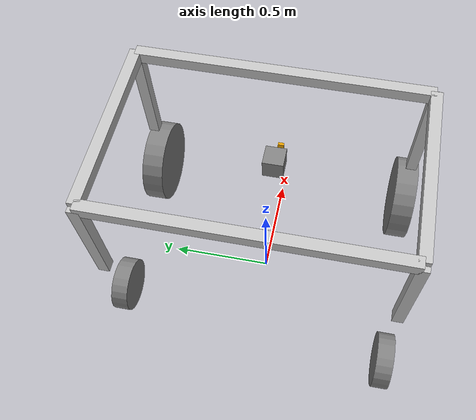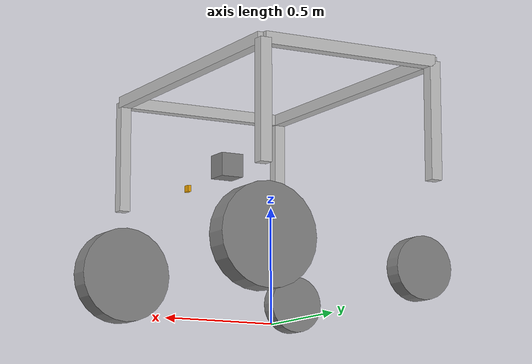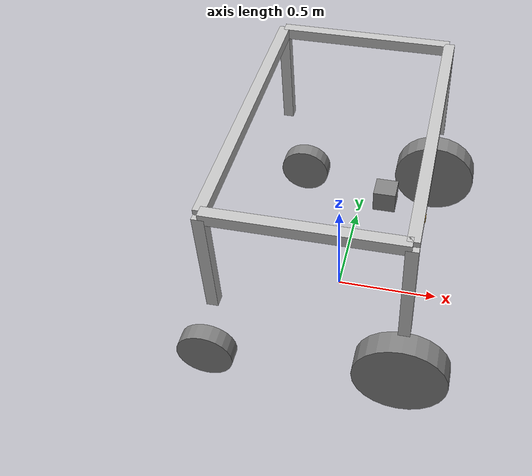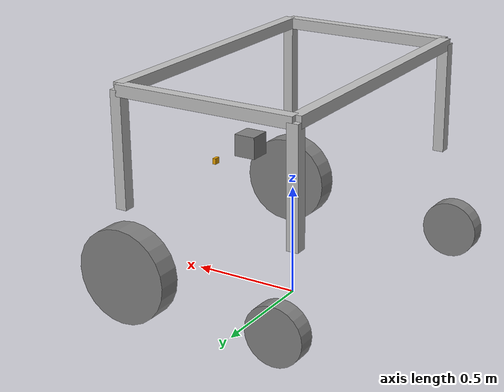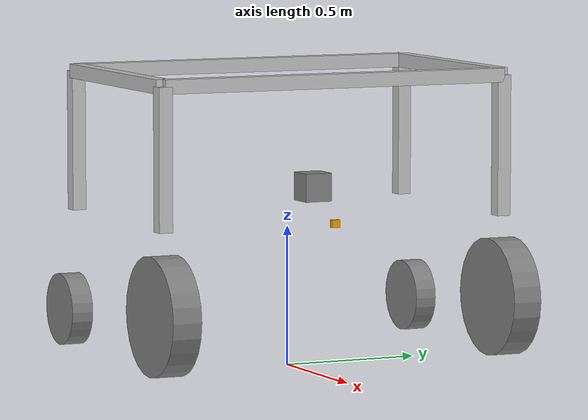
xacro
<?xml version="1.0"?>
	<robot name="weed" xmlns:xacro="http://ros.org/wiki/xacro">

	<link name="base_footprint"/>

	<joint name="base_joint" type="fixed">
		<parent link="base_footprint"/>
		<child link="base_link" />
		<origin xyz="0 0 0.8" rpy="0 0 0"/>
	</joint>

	<link name="base_link">
    <inertial>
			<origin xyz="0 0 0" rpy="0 0 0" />
			<mass value="30" />
		</inertial>
  </link>

	<!-- #################### LEGS #################### -->

	<joint name="front_left_joint" type="fixed">
		<parent link="base_link"/>
		<child link="front_left" />
		<origin xyz="0.4 0.65 0" rpy="0 0 0"/>
	</joint>

	<link name="front_left">
		<inertial>
			<origin xyz="0 0 0" rpy="0 0 0" />
			<mass value="1" />
			<inertia ixx="0" ixy="0.0" ixz="0.0"
					iyy="0" iyz="0.0"
					izz="0" />
		</inertial>
		<visual>
			<origin xyz="0 0 0" rpy="0 0 0" />
			<geometry>
				<box size = "0.05 0.05 0.5"/>
			</geometry>
			<material name="">
				<color rgba="0.752941176470588 0.752941176470588 0.752941176470588 1" />
			</material>
		</visual>
		<collision>
			<origin xyz="0 0 0" rpy="0 0 0" />
			<geometry>
				<box size = "0.05 0.05 0.5"/>
			</geometry>
		</collision>
	</link>

	<joint name="front_right_joint" type="fixed">
		<parent link="base_link"/>
		<child link="front_right" />
		<origin xyz="0.4 -0.65 0" rpy="0 0 0"/>
	</joint>

	<link name="front_right">
		<inertial>
			<origin xyz="0 0 0" rpy="0 0 0" />
			<mass value="1" />
			<inertia ixx="0" ixy="0.0" ixz="0.0"
					iyy="0" iyz="0.0"
					izz="0" />
		</inertial>
		<visual>
			<origin xyz="0 0 0" rpy="0 0 0" />
			<geometry>
				<box size = "0.05 0.05 0.5"/>
			</geometry>
			<material name="">
				<color rgba="0.752941176470588 0.752941176470588 0.752941176470588 1" />
			</material>
		</visual>
		<collision>
			<origin xyz="0 0 0" rpy="0 0 0" />
			<geometry>
				<box size = "0.05 0.05 0.5"/>
			</geometry>
		</collision>
	</link>

	<joint name="back_left_joint" type="fixed">
		<parent link="base_link"/>
		<child link="back_left" />
		<origin xyz="-0.4 0.65 0" rpy="0 0 0"/>
	</joint>

	<link name="back_left">
		<inertial>
			<origin xyz="0 0 0" rpy="0 0 0" />
			<mass value="1" />
			<inertia ixx="0" ixy="0.0" ixz="0.0"
					iyy="0" iyz="0.0"
					izz="0" />
		</inertial>
		<visual>
			<origin xyz="0 0 0" rpy="0 0 0" />
			<geometry>
				<box size = "0.05 0.05 0.5"/>
			</geometry>
			<material name="">
				<color rgba="0.752941176470588 0.752941176470588 0.752941176470588 1" />
			</material>
		</visual>
		<collision>
			<origin xyz="0 0 0" rpy="0 0 0" />
			<geometry>
				<box size = "0.05 0.05 0.4"/>
			</geometry>
		</collision>
	</link>

	<joint name="back_right_joint" type="fixed">
		<parent link="base_link"/>
		<child link="back_right" />
		<origin xyz="-0.4 -0.65 0" rpy="0 0 0"/>
	</joint>

	<link name="back_right">
		<inertial>
			<origin xyz="0 0 0" rpy="0 0 0" />
			<mass value="1" />
			<inertia ixx="0" ixy="0.0" ixz="0.0"
					iyy="0" iyz="0.0"
					izz="0" />
		</inertial>
		<visual>
			<origin xyz="0 0 0" rpy="0 0 0" />
			<geometry>
				<box size = "0.05 0.05 0.5"/>
			</geometry>
			<material name="">
				<color rgba="0.752941176470588 0.752941176470588 0.752941176470588 1" />
			</material>
		</visual>
		<collision>
			<origin xyz="0 0 0" rpy="0 0 0" />
			<geometry>
				<box size = "0.05 0.05 0.4"/>
			</geometry>
		</collision>
	</link>

	<!-- #################### TOP #################### -->

	<joint name="top_front_joint" type="fixed">
		<parent link="base_link"/>
		<child link="top_front" />
		<origin xyz="0.4 0 0.25" rpy="0 0 0"/>
	</joint>

	<link name="top_front">
		<inertial>
			<origin xyz="0 0 0" rpy="0 0 0" />
			<mass value="1" />
			<inertia ixx="0" ixy="0.0" ixz="0.0"
					iyy="0" iyz="0.0"
					izz="0" />
		</inertial>
		<visual>
			<origin xyz="0 0 0" rpy="0 0 0" />
			<geometry>
				<box size = "0.05 1.3 0.05"/>
			</geometry>
			<material name="">
				<color rgba="0.752941176470588 0.752941176470588 0.752941176470588 1" />
			</material>
		</visual>
		<collision>
			<origin xyz="0 0 0" rpy="0 0 0" />
			<geometry>
				<box size = "0.05 1.3 0.05"/>
			</geometry>
		</collision>
	</link>

	<joint name="top_back_joint" type="fixed">
		<parent link="base_link"/>
		<child link="top_back" />
		<origin xyz="-0.4 0 0.25" rpy="0 0 0"/>
	</joint>

	<link name="top_back">
		<inertial>
			<origin xyz="0 0 0" rpy="0 0 0" />
			<mass value="1" />
			<inertia ixx="0" ixy="0.0" ixz="0.0"
					iyy="0" iyz="0.0"
					izz="0" />
		</inertial>
		<visual>
			<origin xyz="0 0 0" rpy="0 0 0" />
			<geometry>
				<box size = "0.05 1.3 0.05"/>
			</geometry>
			<material name="">
				<color rgba="0.752941176470588 0.752941176470588 0.752941176470588 1" />
			</material>
		</visual>
		<collision>
			<origin xyz="0 0 0" rpy="0 0 0" />
			<geometry>
				<box size = "0.05 1.3 0.05"/>
			</geometry>
		</collision>
	</link>

	<joint name="top_left_joint" type="fixed">
		<parent link="base_link"/>
		<child link="top_left" />
		<origin xyz="0 0.65 0.25" rpy="0 0 0"/>
	</joint>

	<link name="top_left">
		<inertial>
			<origin xyz="0 0 0" rpy="0 0 0" />
			<mass value="1" />
			<inertia ixx="0" ixy="0.0" ixz="0.0"
					iyy="0" iyz="0.0"
					izz="0" />
		</inertial>
		<visual>
			<origin xyz="0 0 0" rpy="0 0 0" />
			<geometry>
				<box size = "0.8 0.05 0.05"/>
			</geometry>
			<material name="">
				<color rgba="0.752941176470588 0.752941176470588 0.752941176470588 1" />
			</material>
		</visual>
		<collision>
			<origin xyz="0 0 0" rpy="0 0 0" />
			<geometry>
				<box size = "0.8 0.05 0.05"/>
			</geometry>
		</collision>
	</link>

	<joint name="top_right_joint" type="fixed">
		<parent link="base_link"/>
		<child link="top_right" />
		<origin xyz="0 -0.65 0.25" rpy="0 0 0"/>
	</joint>

	<link name="top_right">
		<inertial>
			<origin xyz="0 0 0" rpy="0 0 0" />
			<mass value="1" />
			<inertia ixx="0" ixy="0.0" ixz="0.0"
					iyy="0" iyz="0.0"
					izz="0" />
		</inertial>
		<visual>
			<origin xyz="0 0 0" rpy="0 0 0" />
			<geometry>
				<box size = "0.8 0.05 0.05"/>
			</geometry>
			<material name="">
				<color rgba="0.752941176470588 0.752941176470588 0.752941176470588 1" />
			</material>
		</visual>
		<collision>
			<origin xyz="0 0 0" rpy="0 0 0" />
			<geometry>
				<box size = "0.8 0.05 0.05"/>
			</geometry>
		</collision>
	</link>

	<!-- TEKERLEK -->
  <link
    name="front_w_l">
    <inertial>
      <origin
        xyz="0 0 0"
        rpy="0 0 0" />
      <mass
        value="3.630032967311711" />
      <inertia
        ixx="0.00669221232999861"
        ixy="1.46876065216874E-06"
        ixz="-1.83677052642238E-07"
        iyy="0.00381017219621702"
        iyz="2.02228538609624E-07"
        izz="0.00380710944075326" />
    </inertial>
    <visual>
      <origin
        xyz="0 0 0"
        rpy="0 0 0" />
     <geometry>
       <cylinder radius="0.21" length="0.105"/>
     </geometry>
      <material
        name="">
        <color
          rgba="0.501960784313725 0.501960784313725 0.501960784313725 1" />
      </material>
    </visual>
    <collision>
      <surface>
        <friction>
          <ode><mu>100000.0</mu><mu2>100000.0</mu2></ode>
        </friction>
      </surface>
      <origin
        xyz="0 0 0"
        rpy="0 0 0" />
     <geometry>
       <cylinder radius="0.21" length="0.105"/>
     </geometry>
    </collision>
  </link>
  <joint
    name="front_wl_j"
    type="continuous">
    <origin
      xyz="0.4 0.65 -0.54"
      rpy="1.57 0 0" />
    <parent
      link="base_link" />
    <child
      link="front_w_l" />
    <axis
      xyz="0 0 1" />
  </joint>
  <link
    name="front_w_r">
    <inertial>
      <origin
        xyz="0 0 0"
        rpy="0 0 0" />
      <mass
        value="3.630032967311706" />
      <inertia
        ixx="0.0066922123299986"
        ixy="1.4687606367534E-06"
        ixz="-1.83677063980871E-07"
        iyy="0.00381016787088096"
        iyz="2.02228538641145E-07"
        izz="0.00380710511541725" />
    </inertial>
    <visual>
      <origin
        xyz="0 0 0"
        rpy="0 0 0" />
     <geometry>
       <cylinder radius="0.21" length="0.105"/>
     </geometry>
      <material
        name="">
        <color
          rgba="0.501960784313725 0.501960784313725 0.501960784313725 1" />
      </material>
    </visual>
    <collision>
      <surface>
        <friction>
          <ode><mu>100000.0</mu><mu2>100000.0</mu2></ode>
        </friction>
      </surface>
      <origin
        xyz="0 0 0"
        rpy="0 0 0" />
     <geometry>
       <cylinder radius="0.21" length="0.105"/>
     </geometry>
    </collision>
  </link>
  <joint
    name="front_wr_j"
    type="continuous">
    <origin
      xyz="0.4 -0.65 -0.54"
      rpy="1.57 0 0" />
    <parent
      link="base_link" />
    <child
      link="front_w_r" />
    <axis
      xyz="0 0 1" />
  </joint>
  <link
    name="back_c_l">
    <inertial>
      <origin
        xyz="0.0408020089137942 -2.20027751224317E-06 -0.0753064138736016"
        rpy="0 0 0" />
      <mass
        value="3" />
      <inertia
        ixx="0.0119429751240832"
        ixy="1.51346058960582E-07"
        ixz="0.0047086697609114"
        iyy="0.012719613396601"
        iyz="-3.20565703090961E-07"
        izz="0.00449043316235224" />
    </inertial>
    <visual>
      <origin
        xyz="0 0 0"
        rpy="0 0 0" />
     <geometry>
       <box size = "0.01 0.01 0.01"/>
     </geometry>
      <material
        name="">
        <color
          rgba="0.752941176470588 0.752941176470588 0.752941176470588 1" />
      </material>
    </visual>
    <collision>
      <surface>
        <friction>
          <ode><mu>100000.0</mu><mu2>100000.0</mu2></ode>
        </friction>
      </surface>
      <origin
        xyz="0 0 0"
        rpy="0 0 0" />
     <geometry>
       <box size = "0.01 0.01 0.01"/>
     </geometry>
    </collision>
  </link>
  <joint
    name="back_cl_j"
    type="continuous">
    <origin
      xyz="-0.4 0.65 -0.62"
      rpy="0 -0 0" />
    <parent
      link="base_link" />
    <child
      link="back_c_l" />
    <axis
      xyz="0 0 1" />
    <limit effort="10000" velocity="1000"/>
  </joint>
  <link
    name="back_w_l">
    <inertial>
      <origin
        xyz="-0.000406180079597973 -6.75068276938251E-05 1.52646951747659E-05"
        rpy="0 0 0" />
      <mass
        value="0.630032967311717" />
      <inertia
        ixx="0.00669221232999866"
        ixy="1.46876065217403E-06"
        ixz="-1.83677052642392E-07"
        iyy="0.00381017219621705"
        iyz="2.02228538599299E-07"
        izz="0.00380710944075334" />
    </inertial>
    <visual>
      <origin
        xyz="0 0 0"
        rpy="0 0 0" />
     <geometry>
       <cylinder radius="0.13" length="0.078"/>
     </geometry>
      <material
        name="">
        <color
          rgba="0.501960784313725 0.501960784313725 0.501960784313725 1" />
      </material>
    </visual>
    <collision>
      <surface>
        <friction>
          <ode><mu>100000.0</mu><mu2>100000.0</mu2></ode>
        </friction>
      </surface>
      <origin
        xyz="0 0 0"
        rpy="0 0 0" />
     <geometry>
       <cylinder radius="0.13" length="0.078"/>
     </geometry>
    </collision>
  </link>
  <joint
    name="back_wl_j"
    type="continuous">
    <origin
      xyz="0.079407 0 0"
      rpy="1.57 0 0" />
    <parent
      link="back_c_l" />
    <child
      link="back_w_l" />
    <axis
      xyz="0 0 1" />
  </joint>
  <link
    name="back_c_r">
    <inertial>
      <origin
        xyz="-0.0408020085623402 2.19978087612205E-06 -0.0753064146672595"
        rpy="0 0 0" />
      <mass
        value="3" />
      <inertia
        ixx="0.0119429749924109"
        ixy="1.51328903334174E-07"
        ixz="-0.00470866980430646"
        iyy="0.0127196133801171"
        iyz="3.20626513970711E-07"
        izz="0.00449043322343492" />
    </inertial>
    <visual>
      <origin
        xyz="0 0 0"
        rpy="0 0 0" />
     <geometry>
       <box size = "0.01 0.01 0.01"/>
     </geometry>
      <material
        name="">
        <color
          rgba="0.752941176470588 0.752941176470588 0.752941176470588 1" />
      </material>
    </visual>
    <collision>
      <surface>
        <friction>
          <ode><mu>100000.0</mu><mu2>100000.0</mu2></ode>
        </friction>
      </surface>
      <origin
        xyz="0 0 0"
        rpy="0 0 0" />
     <geometry>
       <box size = "0.01 0.01 0.01"/>
     </geometry>
    </collision>
  </link>
  <joint
    name="back_cr_j"
    type="continuous">
    <origin
      xyz="-0.4 -0.65 -0.62"
      rpy="0 0 0" />
    <parent
      link="base_link" />
    <child
      link="back_c_r" />
    <axis
      xyz="0 0 1" />
    <limit effort="10000" velocity="1000"/>
  </joint>
  <link
    name="back_w_r">
    <inertial>
      <origin
        xyz="-0.000406180073682316 -6.75068276933533E-05 1.52646951745439E-05"
        rpy="0 0 0" />
      <mass
        value="0.630032967311691" />
      <inertia
        ixx="0.0066922123299985"
        ixy="1.46876064431743E-06"
        ixz="-1.83677052786695E-07"
        iyy="0.00381017423444503"
        iyz="2.0222853863883E-07"
        izz="0.0038071114789812" />
    </inertial>
    <visual>
      <origin
        xyz="0 0 0"
        rpy="0 0 0" />
     <geometry>
       <cylinder radius="0.13" length="0.078"/>
     </geometry>
      <material
        name="">
        <color
          rgba="0.501960784313725 0.501960784313725 0.501960784313725 1" />
      </material>
    </visual>
    <collision>
      <surface>
        <friction>
          <ode><mu>100000.0</mu><mu2>100000.0</mu2></ode>
        </friction>
      </surface>
      <origin
        xyz="0 0 0"
        rpy="0 0 0" />
     <geometry>
       <cylinder radius="0.13" length="0.078"/>
     </geometry>
    </collision>
  </link>
  <joint
    name="back_wr_j"
    type="continuous">
    <origin
      xyz="-0.079407 0 0"
      rpy="1.57 0 0" />
    <parent
      link="back_c_r" />
    <child
      link="back_w_r" />
    <axis
      xyz="0 0 1" />
  </joint>

  <gazebo reference="front_left">
    <material>Gazebo/Red</material>
  </gazebo>
  <gazebo reference="front_right">
    <material>Gazebo/Red</material>
  </gazebo>
  <gazebo reference="back_left">
    <material>Gazebo/Red</material>
  </gazebo>
  <gazebo reference="back_right">
    <material>Gazebo/Red</material>
  </gazebo>

  <gazebo reference="top_front">
    <material>Gazebo/Red</material>
  </gazebo>
  <gazebo reference="top_back">
    <material>Gazebo/Red</material>
  </gazebo>
  <gazebo reference="top_left">
    <material>Gazebo/Red</material>
  </gazebo>
  <gazebo reference="top_right">
    <material>Gazebo/Red</material>
  </gazebo>

  <gazebo reference="front_w_l">
    <material>Gazebo/Black</material>
  </gazebo>
  <gazebo reference="front_w_r">
    <material>Gazebo/Black</material>
  </gazebo>
  <gazebo reference="back_w_l">
    <material>Gazebo/Black</material>
  </gazebo>
  <gazebo reference="back_w_r">
    <material>Gazebo/Black</material>
  </gazebo>

<gazebo>
          <plugin name="diff_drive" filename="libgazebo_ros_diff_drive.so">

      <update_rate>30</update_rate>

      <!-- wheels -->
      <left_joint>front_wl_j</left_joint>
      <right_joint>front_wr_j</right_joint>

      <!-- kinematics -->
      <wheel_separation>1.4</wheel_separation>
      <wheel_diameter>0.42</wheel_diameter>

      <!-- limits -->
      <max_wheel_torque>20</max_wheel_torque>
      <max_wheel_acceleration>1.0</max_wheel_acceleration>

      <command_topic>cmd_vel</command_topic>

      <!-- output -->
      <publish_odom>true</publish_odom>
      <publish_odom_tf>true</publish_odom_tf>
      <publish_wheel_tf>false</publish_wheel_tf>

      <odometry_topic>odom</odometry_topic>
      <odometry_frame>odom</odometry_frame>
      <robot_base_frame>base_footprint</robot_base_frame>

    </plugin>

    <plugin name="turtlebot3_joint_state" filename="libgazebo_ros_joint_state_publisher.so">
      <ros>
        <remapping>~/out:=joint_states</remapping>
      </ros>
      <update_rate>30</update_rate>
      <joint_name>front_wl_j</joint_name>
      <joint_name>front_wr_j</joint_name>

      <joint_name>back_wl_j</joint_name>
      <joint_name>back_wr_j</joint_name>

      <joint_name>back_cl_j</joint_name>
      <joint_name>back_cr_j</joint_name>
    </plugin>
  </gazebo>

<!-- ########################### CAMERA ############################# -->
  <joint name="camera_joint" type="fixed">
    <origin xyz="0.4 0 -0.25" rpy="0 0 0"/>
    <parent link="base_link"/>
    <child link="camera_link"/>
  </joint>

  <link name="camera_link">
    <visual>
      <origin xyz="0 0 0.0" rpy="0 0 0"/>
      <geometry>
        <box size="0.015 0.030 0.027"/>
      </geometry>
    </visual>
    <collision>
      <origin xyz="0 0 0.0" rpy="0 0 0"/>
      <geometry>
        <box size="0.015 0.030 0.027"/>
      </geometry>
    </collision>
  </link>

  <joint name="camera_rgb_joint" type="fixed">
    <origin xyz="0.003 0.011 0.009" rpy="0 0 0"/>
    <parent link="camera_link"/>
    <child link="camera_rgb_frame"/>
  </joint>
  <link name="camera_rgb_frame"/>

  <joint name="camera_rgb_optical_joint" type="fixed">
    <origin xyz="0 0 0" rpy="-1.57 0 -1.57"/>
    <parent link="camera_rgb_frame"/>
    <child link="camera_rgb_optical_frame"/>
  </joint>
  <link name="camera_rgb_optical_frame"/>

  <gazebo reference="camera_link">
      <sensor type="camera" name="camera">
          <update_rate>30.0</update_rate>
          <camera name="head">
              <horizontal_fov>1.3962634</horizontal_fov>
              <image>
                  <width>800</width>
                  <height>600</height>
                  <format>R8G8B8</format>
              </image>
              <clip>
                  <near>0.02</near>
                  <far>300</far>
              </clip>
              <noise>
                  <type>gaussian</type>
                  <mean>0.0</mean>
                  <stddev>0.007</stddev>
              </noise>
          </camera>
          <plugin name="camera_controller" filename="libgazebo_ros_camera.so">
              <alwaysOn>true</alwaysOn>
              <updateRate>30.0</updateRate>
              <cameraName>iRobot/camera</cameraName>
              <imageTopicName>image_raw</imageTopicName>
              <cameraInfoTopicName>camera_info</cameraInfoTopicName>
              <frameName>camera_link</frameName>
              <hackBaseline>0.07</hackBaseline>
              <distortionK1>0.0</distortionK1>
              <distortionK2>0.0</distortionK2>
              <distortionK3>0.0</distortionK3>
              <distortionT1>0.0</distortionT1>
              <distortionT2>0.0</distortionT2>
          </plugin>
      </sensor>
</gazebo>

    <xacro:property name="M_PI" value="3.1415926535897931" />

    <!-- The following values are approximate, and the camera node
     publishing TF values with actual calibrated camera extrinsic values -->
    <xacro:property name="d435_cam_depth_to_left_ir_offset" value="0.0"/>
    <xacro:property name="d435_cam_depth_to_right_ir_offset" value="-0.050"/>
    <xacro:property name="d435_cam_depth_to_color_offset" value="0.015"/>

    <!-- The following values model the aluminum peripherial case for the
    D435 camera, with the camera joint represented by the actual
    peripherial camera tripod mount -->
    <xacro:property name="d435_cam_width" value="0.090"/>
    <xacro:property name="d435_cam_height" value="0.025"/>
    <xacro:property name="d435_cam_depth" value="0.02505"/>
    <xacro:property name="d435_cam_mount_from_center_offset" value="0.0149"/>

    <!-- The following offset is relative the the physical D435 camera peripherial
    camera tripod mount -->
    <xacro:property name="d435_cam_depth_px" value="${d435_cam_mount_from_center_offset}"/>
    <xacro:property name="d435_cam_depth_py" value="0.0175"/>
    <xacro:property name="d435_cam_depth_pz" value="${d435_cam_height/2}"/>

    <material name="realsense_camera_aluminum">
    <color rgba="0.5 0.5 0.5 1"/>
    </material>

    <!-- camera body, with origin at bottom screw mount -->
    <joint name="realsense_camera_joint" type="fixed">
      <origin xyz="0.2 0 -0.15" rpy="0 0 0"/>
      <parent link="base_link"/>
      <child link="realsense_camera_bottom_screw_frame" />
    </joint>
    <link name="realsense_camera_bottom_screw_frame"/>

    <joint name="realsense_camera_link_joint" type="fixed">
      <origin xyz="0 ${d435_cam_depth_py} ${d435_cam_depth_pz}" rpy="0 0 0"/>
      <parent link="realsense_camera_bottom_screw_frame"/>
      <child link="realsense_camera_link" />
    </joint>

    <link name="realsense_camera_link">
      <visual>
      <origin xyz="${d435_cam_mount_from_center_offset} ${-d435_cam_depth_py} 0" rpy="${M_PI/2} 0 ${M_PI/2}"/>
      <geometry>
        <box size="0.1 0.1 0.1"/>
      </geometry>
        <material name="realsense_camera_aluminum"/>
      </visual>
      <collision>
        <origin xyz="0 ${-d435_cam_depth_py} 0" rpy="0 0 0"/>
        <geometry>
        <box size="${d435_cam_depth} ${d435_cam_width} ${d435_cam_height}"/>
        </geometry>
      </collision>
      <inertial>
        <!-- The following are not reliable values, and should not be used for modeling -->
        <mass value="0.564" />
        <origin xyz="0 0 0" />
        <inertia ixx="0.003881243" ixy="0.0" ixz="0.0" iyy="0.000498940" iyz="0.0" izz="0.003879257" />
      </inertial>
    </link>

    <!-- camera depth joints and links -->
    <joint name="realsense_camera_depth_joint" type="fixed">
      <origin xyz="0 0 0" rpy="0 0 0"/>
      <parent link="realsense_camera_link"/>
      <child link="realsense_camera_depth_frame" />
    </joint>
    <link name="realsense_camera_depth_frame"/>

    <joint name="realsense_camera_depth_optical_joint" type="fixed">
      <origin xyz="0 0 0" rpy="${-M_PI/2} 0 ${-M_PI/2}" />
      <parent link="realsense_camera_depth_frame" />
      <child link="realsense_camera_depth_optical_frame" />
    </joint>
    <link name="realsense_camera_depth_optical_frame"/>

    <!-- camera left IR joints and links -->
    <joint name="realsense_camera_left_ir_joint" type="fixed">
      <origin xyz="0 ${d435_cam_depth_to_left_ir_offset} 0" rpy="0 0 0" />
      <parent link="realsense_camera_depth_frame" />
      <child link="realsense_camera_left_ir_frame" />
    </joint>
    <link name="realsense_camera_left_ir_frame"/>

    <joint name="realsense_camera_left_ir_optical_joint" type="fixed">
      <origin xyz="0 0 0" rpy="${-M_PI/2} 0 ${-M_PI/2}" />
      <parent link="realsense_camera_left_ir_frame" />
      <child link="realsense_camera_left_ir_optical_frame" />
    </joint>
    <link name="realsense_camera_left_ir_optical_frame"/>

    <!-- camera right IR joints and links -->
    <joint name="realsense_camera_right_ir_joint" type="fixed">
      <origin xyz="0 ${d435_cam_depth_to_right_ir_offset} 0" rpy="0 0 0" />
      <parent link="realsense_camera_depth_frame" />
      <child link="realsense_camera_right_ir_frame" />
    </joint>
    <link name="realsense_camera_right_ir_frame"/>

    <joint name="realsense_camera_right_ir_optical_joint" type="fixed">
      <origin xyz="0 0 0" rpy="${-M_PI/2} 0 ${-M_PI/2}" />
      <parent link="realsense_camera_right_ir_frame" />
      <child link="realsense_camera_right_ir_optical_frame" />
    </joint>
    <link name="realsense_camera_right_ir_optical_frame"/>

    <!-- camera color joints and links -->
    <joint name="realsense_camera_color_joint" type="fixed">
      <origin xyz="0 ${d435_cam_depth_to_color_offset} 0" rpy="0 0 0" />
      <parent link="realsense_camera_depth_frame" />
      <child link="realsense_camera_color_frame" />
    </joint>
    <link name="realsense_camera_color_frame"/>

    <joint name="realsense_camera_color_optical_joint" type="fixed">
      <origin xyz="0 0 0" rpy="${-M_PI/2} 0 ${-M_PI/2}" />
      <parent link="realsense_camera_color_frame" />
      <child link="realsense_camera_color_optical_frame" />
    </joint>
    <link name="realsense_camera_color_optical_frame"/>

    <!-- Load parameters to model's main link-->

  <gazebo reference="realsense_camera_link">
      <sensor type="camera" name="realsense_camera">
          <update_rate>30.0</update_rate>
          <visualize>true</visualize>
          <camera name="head">
              <horizontal_fov>1.3962634</horizontal_fov>
              <image>
                  <width>800</width>
                  <height>600</height>
                  <format>R8G8B8</format>
              </image>
              <clip>
                  <near>0.02</near>
                  <far>300</far>
              </clip>
              <noise>
                  <type>gaussian</type>
                  <mean>0.0</mean>
                  <stddev>0.007</stddev>
              </noise>
          </camera>
          <plugin name="realsense_camera_controller" filename="libgazebo_ros_camera.so">
              <alwaysOn>true</alwaysOn>
              <updateRate>30.0</updateRate>
              <cameraName>realsense/camera</cameraName>
              <imageTopicName>realsense/image_raw</imageTopicName>
              <cameraInfoTopicName>realsense_camera_info</cameraInfoTopicName>
              <frameName>realsense_camera_link</frameName>
              <hackBaseline>0.07</hackBaseline>
              <distortionK1>0.0</distortionK1>
              <distortionK2>0.0</distortionK2>
              <distortionK3>0.0</distortionK3>
              <distortionT1>0.0</distortionT1>
              <distortionT2>0.0</distortionT2>
          </plugin>
      </sensor>
  </gazebo>

    <gazebo reference="realsense_camera_link">
      <sensor name="intel_realsense_r200_depth" type="depth">
        <always_on>1</always_on>
        <update_rate>30</update_rate>
        <camera name="realsense_depth_camera">
          <horizontal_fov>1.3962634</horizontal_fov>
        </camera>
	      <plugin name="intel_realsense_r200_depth_driver" filename="libgazebo_ros_camera.so">
            <ros>
            </ros>
            <camera_name>intel_realsense_r200_depth</camera_name>
            <frame_name>realsense_camera_depth_optical_frame</frame_name>
            <hack_baseline>0.07</hack_baseline>
            <min_depth>0.001</min_depth>
          </plugin>
      </sensor>

  </gazebo>

</robot>
